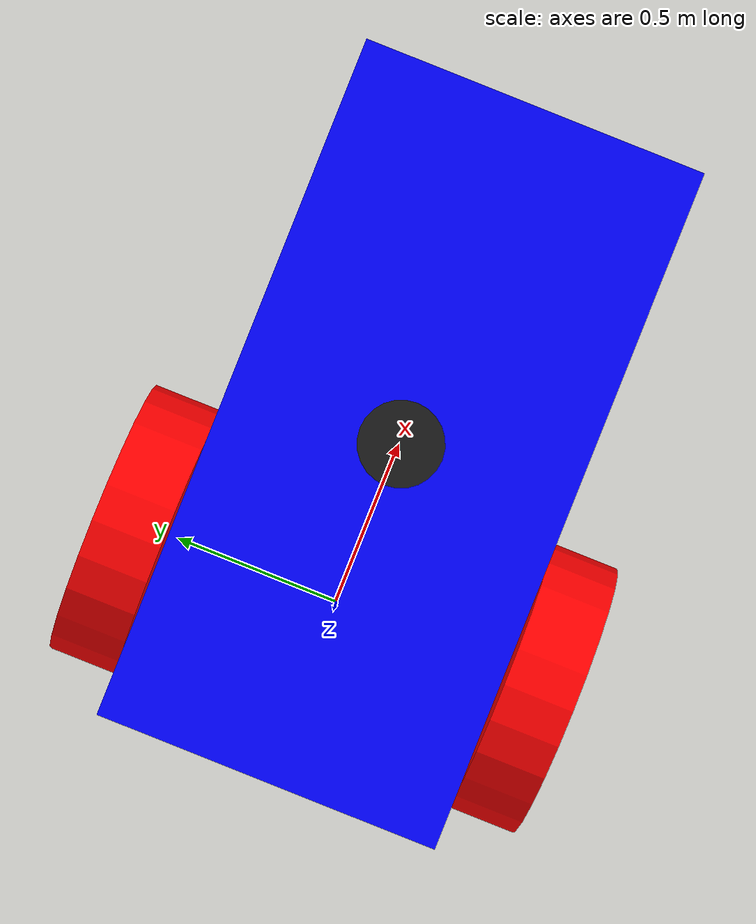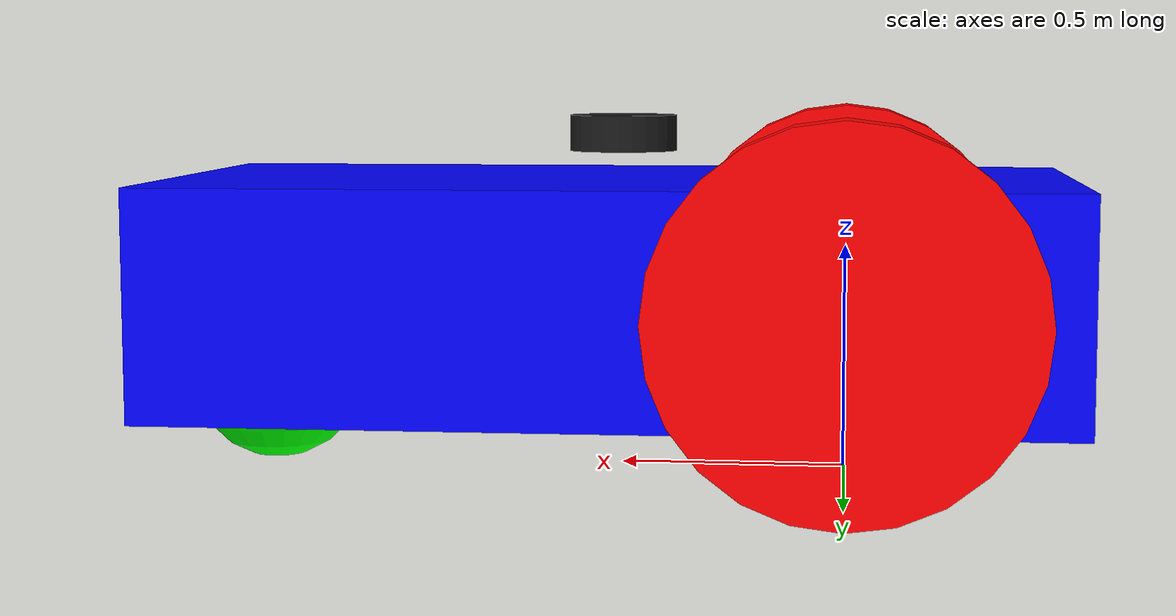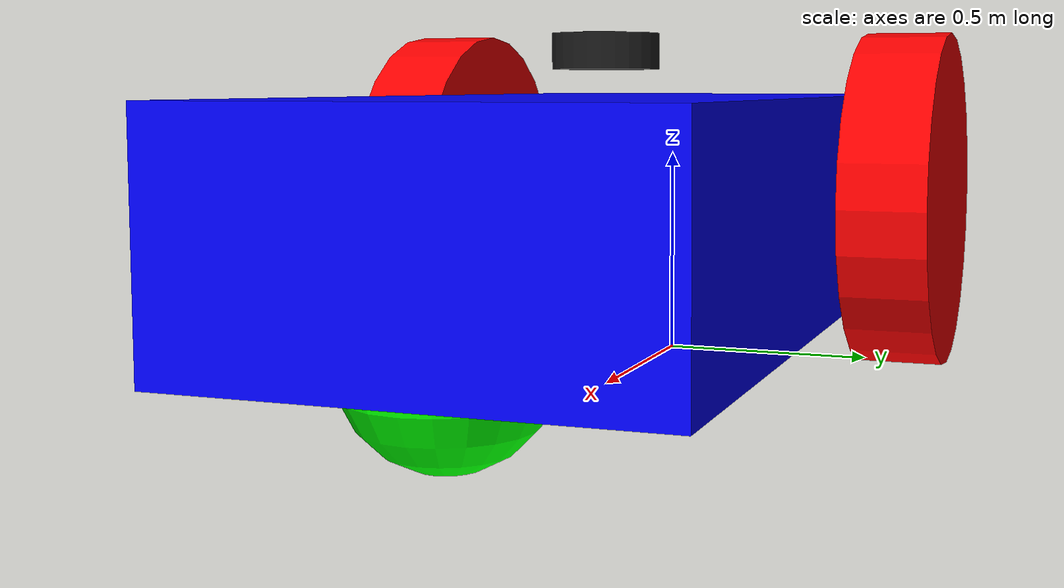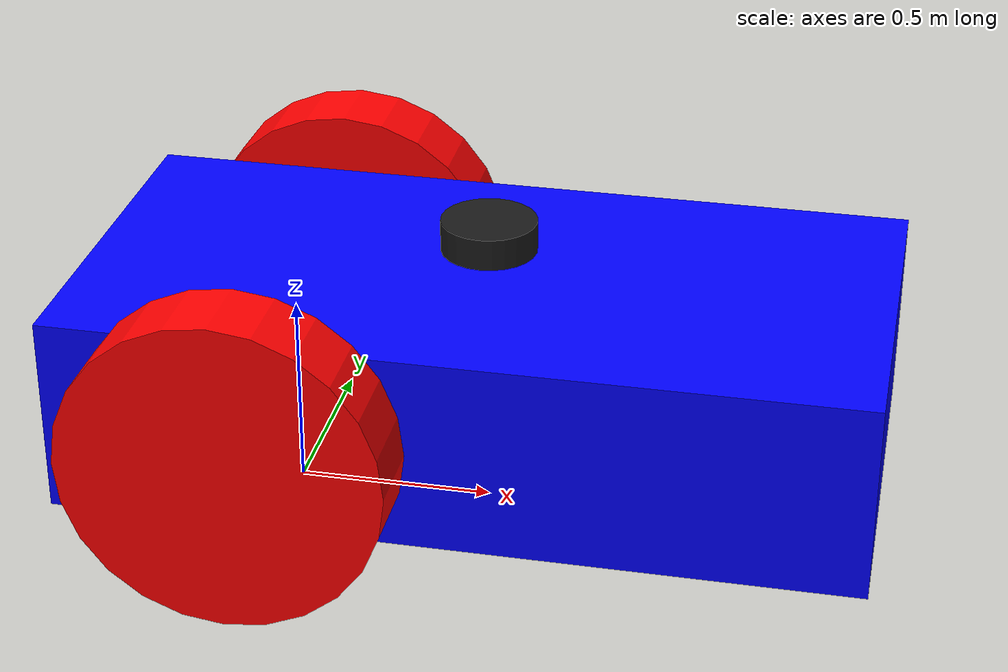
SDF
<?xml version="1.0"?>
<sdf version="1.10">
  <model name="rover" canonical_link="chassis">

    <pose>0 0 0 0 0 0</pose>

    <link name="chassis">
      <pose relative_to="__model__">0.5 0 0.4 0 0 0</pose>

      <inertial>
        <mass>1.14395</mass>
        <inertia>
          <ixx>0.095329</ixx>
          <ixy>0</ixy>
          <ixz>0</ixz>
          <iyy>0.381317</iyy>
          <iyz>0</iyz>
          <izz>0.476646</izz>
        </inertia>
      </inertial>

      <visual name="visual">
        <geometry>
          <box>
            <size>2.0 1.0 0.5</size>
          </box>
        </geometry>
        <material>
          <ambient>0.0 0.0 1.0 1</ambient>
          <diffuse>0.0 0.0 1.0 1</diffuse>
        </material>
      </visual>

      <collision name="collision">
        <geometry>
          <box>
            <size>2.0 1.0 0.5</size>
          </box>
        </geometry>
      </collision>
    </link>

    <link name="left_wheel">
      <pose relative_to="chassis">-0.5 0.6 0 -1.5707 0 0</pose>

      <inertial>
        <mass>1</mass>
        <inertia>
          <ixx>0.043333</ixx>
          <ixy>0</ixy>
          <ixz>0</ixz>
          <iyy>0.043333</iyy>
          <iyz>0</iyz>
          <izz>0.08</izz>
        </inertia>
      </inertial>

      <visual name="visual">
        <geometry>
          <cylinder>
            <radius>0.4</radius>
            <length>0.2</length>
          </cylinder>
        </geometry>
        <material>
          <ambient>1.0 0.0 0.0 1</ambient>
          <diffuse>1.0 0.0 0.0 1</diffuse>
        </material>
      </visual>

      <collision name="collision">
        <geometry>
          <cylinder>
            <radius>0.4</radius>
            <length>0.2</length>
          </cylinder>
        </geometry>
      </collision>
    </link>

    <link name="right_wheel">
      <pose relative_to="chassis">-0.5 -0.6 0 -1.5707 0 0</pose>

      <inertial>
        <mass>1</mass>
        <inertia>
          <ixx>0.043333</ixx>
          <ixy>0</ixy>
          <ixz>0</ixz>
          <iyy>0.043333</iyy>
          <iyz>0</iyz>
          <izz>0.08</izz>
        </inertia>
      </inertial>

      <visual name="visual">
        <geometry>
          <cylinder>
            <radius>0.4</radius>
            <length>0.2</length>
          </cylinder>
        </geometry>
        <material>
          <ambient>1.0 0.0 0.0 1</ambient>
          <diffuse>1.0 0.0 0.0 1</diffuse>
        </material>
      </visual>

      <collision name="collision">
        <geometry>
          <cylinder>
            <radius>0.4</radius>
            <length>0.2</length>
          </cylinder>
        </geometry>
      </collision>
    </link>

    <frame name="caster_frame" attached_to="chassis">
      <pose>0.8 0 -0.2 0 0 0</pose>
    </frame>

    <link name="caster">
      <pose relative_to="caster_frame"/>

      <inertial>
        <mass>1</mass>
        <inertia>
          <ixx>0.016</ixx>
          <ixy>0</ixy>
          <ixz>0</ixz>
          <iyy>0.016</iyy>
          <iyz>0</iyz>
          <izz>0.016</izz>
        </inertia>
      </inertial>

      <visual name="visual">
        <geometry>
          <sphere>
            <radius>0.2</radius>
          </sphere>
        </geometry>
        <material>
          <ambient>0.0 1.0 0.0 1</ambient>
          <diffuse>0.0 1.0 0.0 1</diffuse>
        </material>
      </visual>

      <collision name="collision">
        <geometry>
          <sphere>
            <radius>0.2</radius>
          </sphere>
        </geometry>
      </collision>
    </link>

    <link name="lidar_link">
      <pose relative_to="chassis">0 0 0.35 0 0 0</pose>

      <inertial>
        <mass>0.1</mass>
        <inertia>
          <ixx>0.0002</ixx>
          <iyy>0.0002</iyy>
          <izz>0.0002</izz>
        </inertia>
      </inertial>

      <visual name="lidar_visual">
        <geometry>
          <cylinder>
            <radius>0.12</radius>
            <length>0.08</length>
          </cylinder>
        </geometry>
        <material>
          <ambient>0.1 0.1 0.1 1</ambient>
          <diffuse>0.1 0.1 0.1 1</diffuse>
        </material>
      </visual>

      <collision name="lidar_collision">
        <geometry>
          <cylinder>
            <radius>0.12</radius>
            <length>0.08</length>
          </cylinder>
        </geometry>
      </collision>

        <sensor name="lidar" type="gpu_lidar">
        <topic>/model/rover/scan</topic>
        <update_rate>10</update_rate>
        <always_on>true</always_on>
        <visualize>true</visualize>

        <lidar>
            <scan>
            <horizontal>
                <samples>360</samples>
                <resolution>1</resolution>
                <min_angle>-3.14159</min_angle>
                <max_angle>3.14159</max_angle>
            </horizontal>

            <vertical>
                <samples>1</samples>
                <resolution>1</resolution>
                <min_angle>0</min_angle>
                <max_angle>0</max_angle>
            </vertical>
            </scan>

            <range>
            <min>0.12</min>
            <max>10.0</max>
            <resolution>0.01</resolution>
            </range>
        </lidar>
        </sensor>
    </link>

    <joint name="left_wheel_joint" type="revolute">
      <pose relative_to="left_wheel"/>
      <parent>chassis</parent>
      <child>left_wheel</child>
      <axis>
        <xyz expressed_in="__model__">0 1 0</xyz>
        <limit>
          <lower>-1.79769e+308</lower>
          <upper>1.79769e+308</upper>
        </limit>
      </axis>
    </joint>

    <joint name="right_wheel_joint" type="revolute">
      <pose relative_to="right_wheel"/>
      <parent>chassis</parent>
      <child>right_wheel</child>
      <axis>
        <xyz expressed_in="__model__">0 1 0</xyz>
        <limit>
          <lower>-1.79769e+308</lower>
          <upper>1.79769e+308</upper>
        </limit>
      </axis>
    </joint>

    <joint name="caster_wheel" type="ball">
      <parent>chassis</parent>
      <child>caster</child>
    </joint>

    <joint name="lidar_joint" type="fixed">
      <parent>chassis</parent>
      <child>lidar_link</child>
    </joint>

    <plugin
      filename="gz-sim-diff-drive-system"
      name="gz::sim::systems::DiffDrive">
      <left_joint>left_wheel_joint</left_joint>
      <right_joint>right_wheel_joint</right_joint>
      <wheel_separation>1.2</wheel_separation>
      <wheel_radius>0.4</wheel_radius>
      <topic>/model/rover/cmd_vel</topic>
      <odom_topic>/model/rover/odometry</odom_topic>
      <tf_topic>/model/rover/tf</tf_topic>
      <frame_id>rover/odom</frame_id>
      <child_frame_id>rover/chassis</child_frame_id>
      <odom_publish_frequency>30</odom_publish_frequency>
    </plugin>

  </model>
</sdf>
